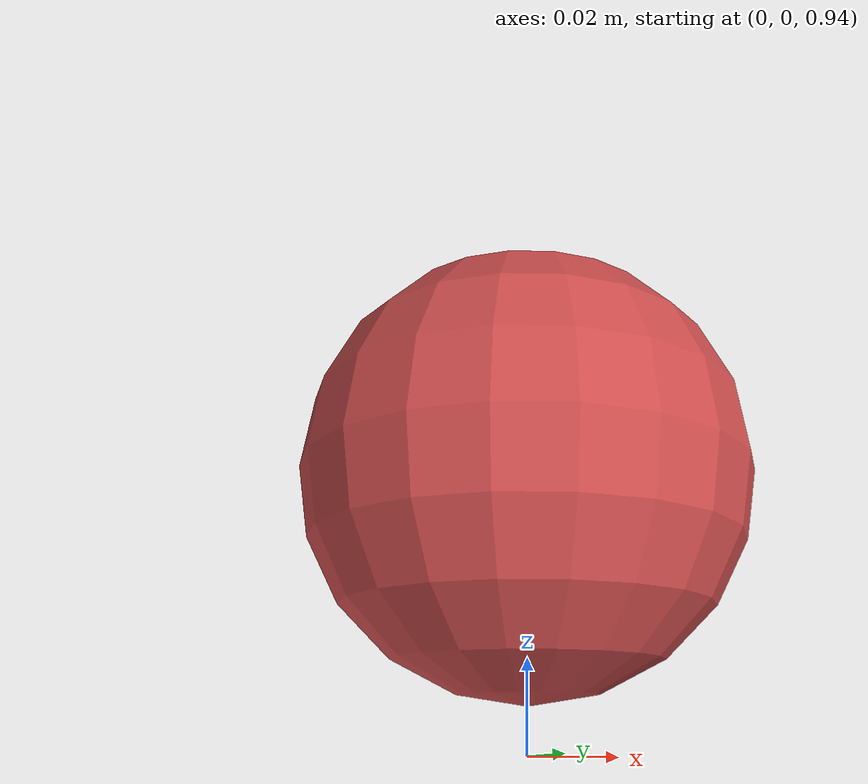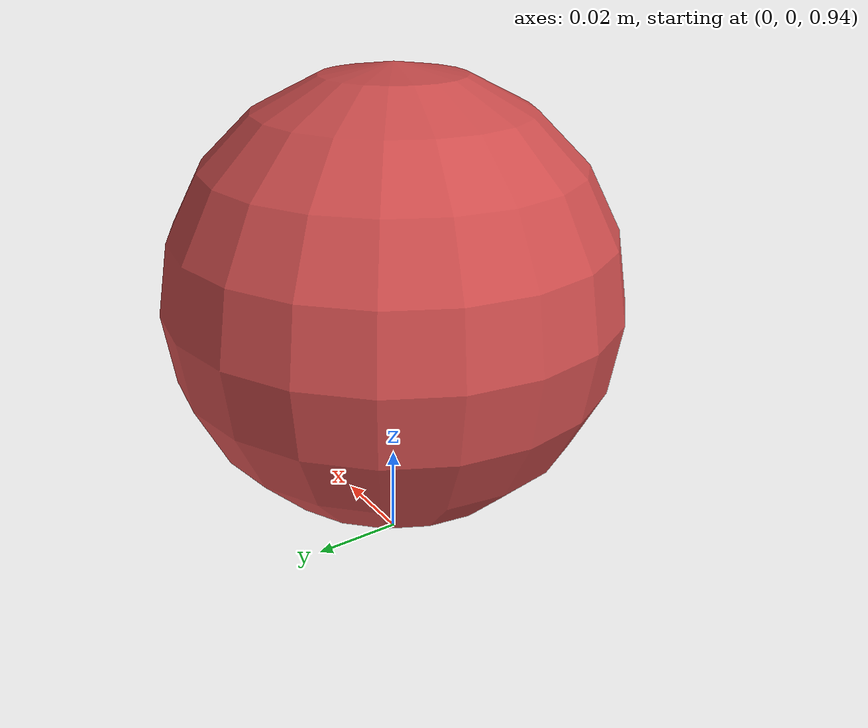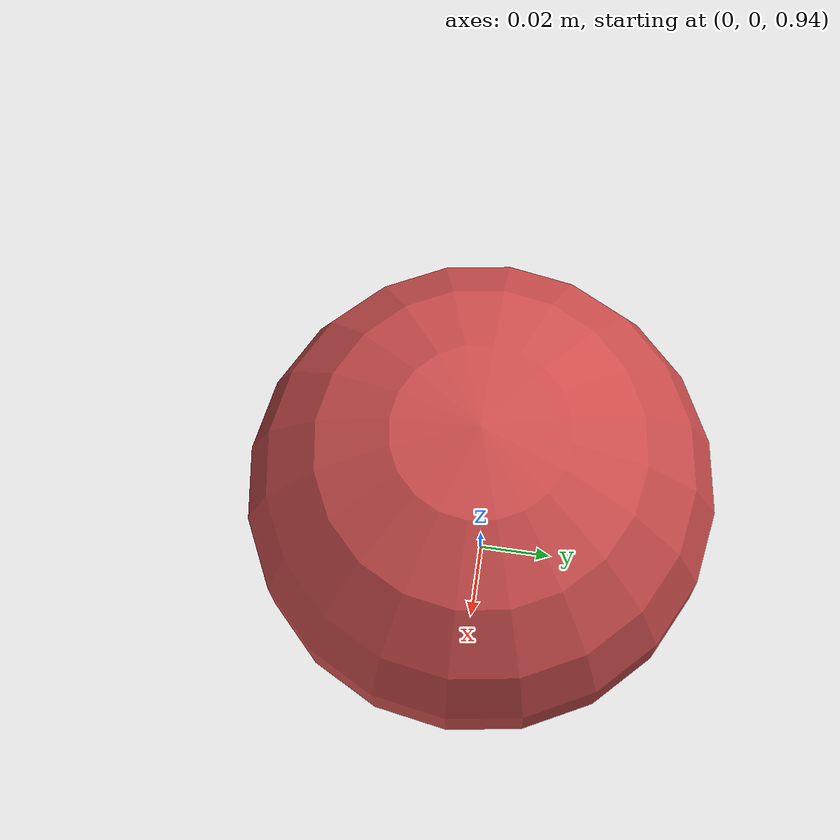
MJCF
<mujoco model="contact_test">
  <option timestep="0.001" gravity="0 0 -9.81"/>

  <visual>
    <headlight ambient="0.5 0.5 0.5"/>
  </visual>

  <asset>
    <texture name="grid" type="2d" builtin="checker" width="512" height="512" rgb1="0.2 0.3 0.4" rgb2="0.3 0.4 0.5"/>
    <material name="grid" texture="grid" texrepeat="1 1" reflectance="0.2"/>
    <material name="finger" rgba="0.8 0.3 0.3 1.0"/>
  </asset>

  <worldbody>
    <!-- Ground plane -->
    <geom name="floor" type="plane" size="2 2 0.1" material="grid"
          condim="6" friction="0.6 0.005 0.0001" solref="0.02 1.0"/>

    <!-- Falling sphere (fingertip proxy) -->
    <body name="fingertip" pos="0 0 1.0">
      <freejoint/>
      <!-- Main collision geom with touch sensor -->
      <geom name="finger" type="sphere" size="0.05" mass="0.1" material="finger"
            condim="6" friction="0.8 0.005 0.0001" solref="0.02 1.0"/>
      <!-- Site for force measurement -->
      <site name="contact_site" pos="0 0 0" size="0.001"/>
    </body>
  </worldbody>

  <sensor>
    <!-- Touch sensor on the geom itself -->
    <touch name="finger_touch" site="contact_site"/>
    <!-- Force/torque sensor -->
    <framepos name="finger_pos" objtype="site" objname="contact_site"/>
    <framequat name="finger_quat" objtype="site" objname="contact_site"/>
    <framelinvel name="finger_vel" objtype="site" objname="contact_site"/>
  </sensor>
</mujoco>
